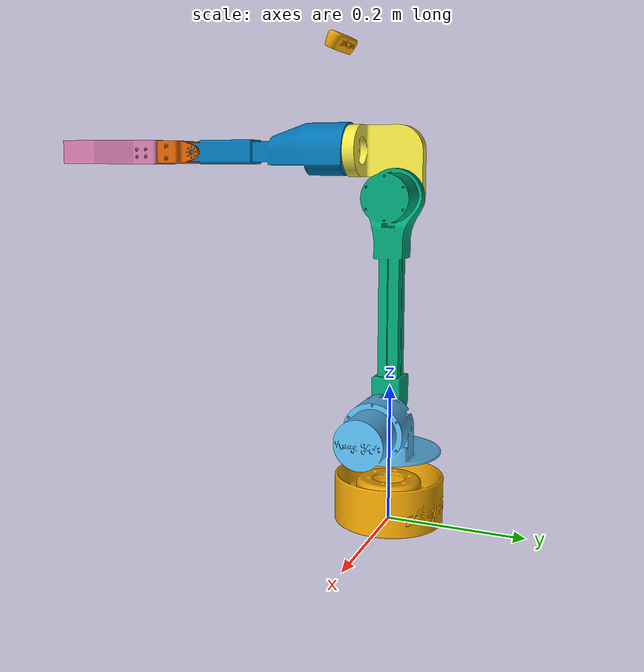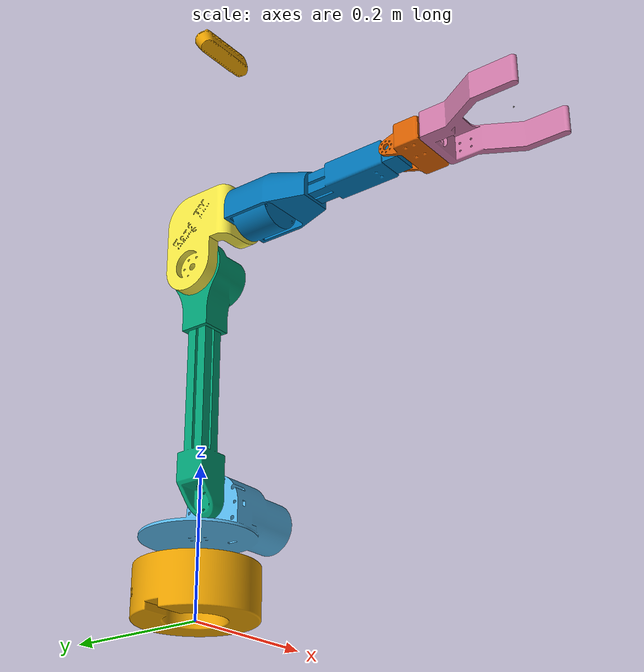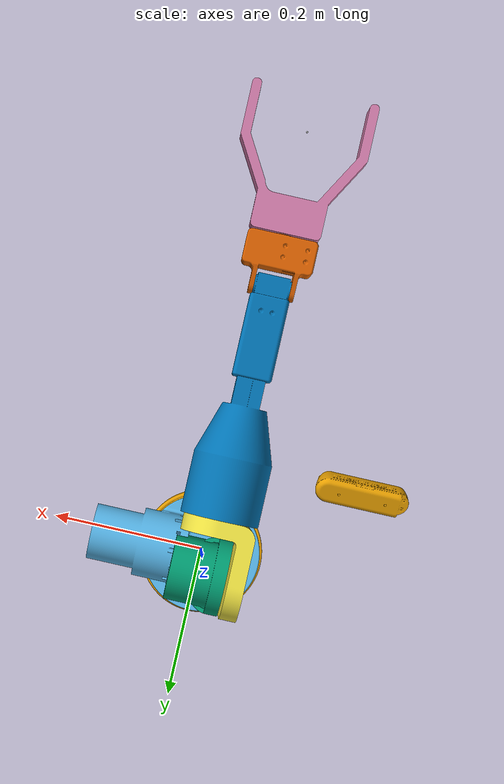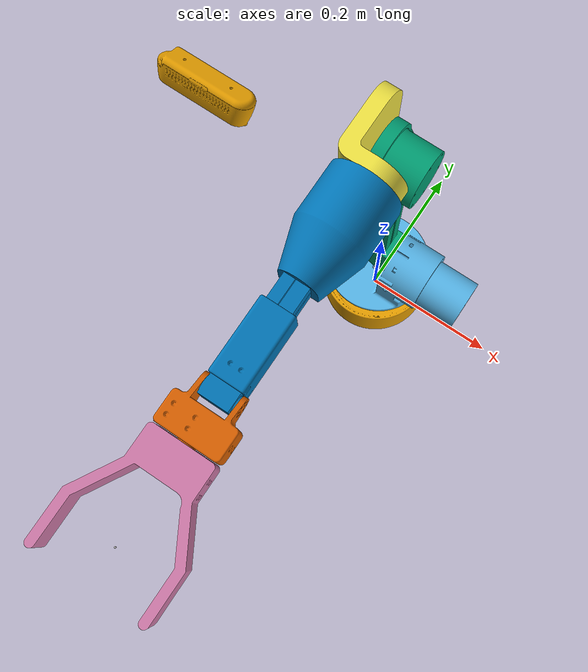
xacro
<?xml version="1.0"?>
<robot xmlns:xacro="http://www.ros.org/wiki/xacro" name="urdfbot">
    <xacro:arg name="initial_positions_file" default="initial_positions.yaml" />

    <!-- Import urdfbot urdf file -->
    <xacro:include filename="$(find urdfbot_description)/urdf/urdfbot_simple.urdf" />

    <!-- Import control_xacro -->
    <xacro:include filename="urdfbot.ros2_control.xacro" />

    <xacro:urdfbot_ros2_control name="FakeSystem" initial_positions_file="$(arg initial_positions_file)"/>

</robot>

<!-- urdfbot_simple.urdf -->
<robot name="urdfbot">

    <link name="mani_link1">
        <visual>
            <geometry>
                <mesh filename="package://urdfbot_description/meshes/visual/mani_1.stl" scale="0.001 0.001 0.001"/>
            </geometry>
        </visual>
        <collision>
            <geometry>
                <mesh filename="package://urdfbot_description/meshes/collision/mani_1.stl" scale="0.001 0.001 0.001"/>
            </geometry>
        </collision>
    </link>

    <link name="mani_link2">
        <visual>
            <geometry>
                <mesh filename="package://urdfbot_description/meshes/visual/mani_2.stl" scale="0.001 0.001 0.001"/>
            </geometry>
        </visual>
        <collision>
            <geometry>
                <mesh filename="package://urdfbot_description/meshes/collision/mani_2.stl" scale="0.001 0.001 0.001"/>
            </geometry>
        </collision>
    </link>

    <joint name="mani_joint1" type="revolute">
        <origin rpy="0 0 0" xyz="0 0 0.103" />
        <parent link="mani_link1" />
        <child link="mani_link2" />
        <axis xyz="0 0 1" />
        <limit effort="87" lower="-2.9671" upper="2.9671" velocity="2.3925" />
    </joint>

    <link name="mani_link3">
        <visual>
            <geometry>
                <mesh filename="package://urdfbot_description/meshes/visual/mani_3.stl" scale="0.001 0.001 0.001"/>
            </geometry>
        </visual>
        <collision>
            <geometry>
                <mesh filename="package://urdfbot_description/meshes/collision/mani_3.stl" scale="0.001 0.001 0.001"/>
            </geometry>
        </collision>
    </link>

    <joint name="mani_joint2" type="revolute">
        <origin rpy="0 -1.57075 0" xyz="0.02285 0 0.051" />
        <parent link="mani_link2" />
        <child link="mani_link3" />
        <axis xyz="0 0 1" />
        <limit effort="87" lower="-1.57075" upper="1.57075" velocity="2.3925" />
    </joint>

    <link name="mani_link4">
        <visual>
            <geometry>
                <mesh filename="package://urdfbot_description/meshes/visual/mani_4.stl" scale="0.001 0.001 0.001"/>
            </geometry>
        </visual>
        <collision>
            <geometry>
                <mesh filename="package://urdfbot_description/meshes/collision/mani_4.stl" scale="0.001 0.001 0.001"/>
            </geometry>
        </collision>
    </link>

    <joint name="mani_joint3" type="revolute">
        <origin rpy="0 0 0" xyz="0.3195 0 0.0455" />
        <parent link="mani_link3" />
        <child link="mani_link4" />
        <axis xyz="0 0 1" />
        <limit effort="87" lower="-1.57075" upper="1.57075" velocity="2.3925" />
    </joint>

    <link name="mani_link5">
        <visual>
            <geometry>
                <mesh filename="package://urdfbot_description/meshes/visual/mani_5.stl" scale="0.001 0.001 0.001"/>
            </geometry>
        </visual>
        <collision>
            <geometry>
                <mesh filename="package://urdfbot_description/meshes/collision/mani_5.stl" scale="0.001 0.001 0.001"/>
            </geometry>
        </collision>
    </link>

    <joint name="mani_joint4" type="revolute">
        <origin rpy="0 -1.57075 1.57075" xyz="0.066 -0.064 -0.022" />
        <parent link="mani_link4" />
        <child link="mani_link5" />
        <axis xyz="0 0 1" />
        <limit effort="87" lower="-2.9671" upper="2.9671" velocity="2.3925" />
    </joint>

    <link name="mani_link6">
        <visual>
            <geometry>
                <mesh filename="package://urdfbot_description/meshes/visual/mani_6.stl" scale="0.001 0.001 0.001"/>
            </geometry>
        </visual>
        <collision>
            <geometry>
                <mesh filename="package://urdfbot_description/meshes/collision/mani_6.stl" scale="0.001 0.001 0.001"/>
            </geometry>
        </collision>
    </link>

    <joint name="mani_joint5" type="revolute">
        <origin rpy="0 0 0" xyz="0 0 0.24875" />
        <parent link="mani_link5" />
        <child link="mani_link6" />
        <axis xyz="1 0 0" />
        <limit effort="87" lower="-1.57075" upper="1.57075" velocity="2.3925" />
    </joint>

    <link name="mani_link7">
        <visual>
            <geometry>
                <mesh filename="package://urdfbot_description/meshes/visual/mani_7.stl" scale="0.001 0.001 0.001"/>
            </geometry>
        </visual>
        <collision>
            <geometry>
                <mesh filename="package://urdfbot_description/meshes/collision/mani_7.stl" scale="0.001 0.001 0.001"/>
            </geometry>
        </collision>
    </link>

    <joint name="mani_joint6" type="revolute">
        <origin rpy="0 0 0" xyz="0 0 0.0565" />
        <parent link="mani_link6" />
        <child link="mani_link7" />
        <axis xyz="0 0 1" />
        <limit effort="87" lower="-2.9671" upper="2.9671" velocity="2.3925" />
    </joint>

    <link name="mani_link8">
    	<visual>
            <geometry>
                <sphere radius="0.001" />
            </geometry>
        </visual>
    </link>

    <joint name="mani_joint7" type="revolute">
        <origin rpy="0 0 0" xyz="0 0 0.110" />
        <parent link="mani_link7" />
        <child link="mani_link8" />
        <axis xyz="1 0 0" />
        <limit effort="87" lower="-3.1415" upper="3.1415" velocity="2.3925" />
    </joint>

     <!-- CAMERA -->
    <joint name="camera_joint" type="fixed">
        <parent link="mani_link1"/>
        <child link="camera_link"/>
        <origin xyz="-0.123 -0.13 0.7" rpy="0 1.0996 -1.57075"/>
    </joint>

    <link name="camera_link">
        <visual>
            <geometry>
                <mesh filename="package://urdfbot_description/meshes/visual/mani_camera.stl" scale="0.001 0.001 0.001"/>
            </geometry>
        </visual>
        <collision>
            <geometry>
                <mesh filename="package://urdfbot_description/meshes/visual/mani_camera.stl" scale="0.001 0.001 0.001"/>
            </geometry>
        </collision>
    </link>

    <joint name="camera_optical_joint" type="fixed">
        <parent link="camera_link"/>
        <child link="camera_link_optical"/>
        <origin xyz="0 0 0" rpy="-1.57075 0 -1.57075"/>
    </joint>

    <link name="camera_link_optical">
    </link>

</robot>
